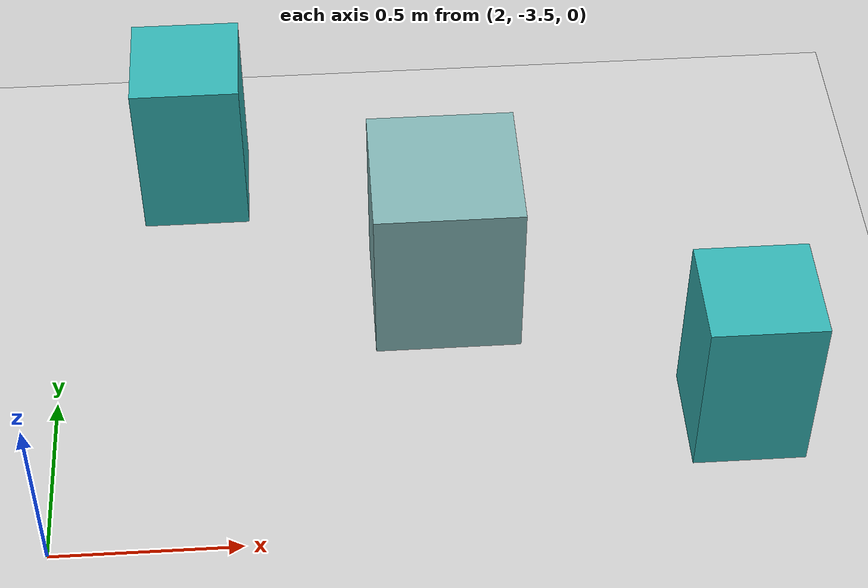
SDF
<sdf version="1.7">
 <world name="default">
  <model name="ground_plane">
   <static>1</static>
   <link name="link">
    <collision name="collision">
     <geometry><plane><normal>0 0 1</normal><size>100 100</size></plane></geometry>
     <surface><friction><ode><mu>100</mu><mu2>50</mu2></ode></friction></surface>
    </collision>
    <visual name="visual">
     <cast_shadows>0</cast_shadows>
     <geometry><plane><normal>0 0 1</normal><size>100 100</size></plane></geometry>
     <material>
      <script><uri>file://media/materials/scripts/gazebo.material</uri><name>Gazebo/Grey</name></script>
     </material>
    </visual>
   </link>
  </model>
  <model name="unit_box_0.3_0_clone_2">
   <model name="unit_box_0.3">
    <link name="link">
     <inertial>
      <mass>1</mass>
      <inertia>
       <ixx>0.166667</ixx>
       <ixy>0</ixy>
       <ixz>0</ixz>
       <iyy>0.166667</iyy>
       <iyz>0</iyz>
       <izz>0.166667</izz>
      </inertia>
     </inertial>
     <visual name="visual">
      <geometry><box><size>0.3 0.3 0.5</size></box></geometry>
      <material>
       <script><name>Gazebo/Grey</name><uri>file://media/materials/scripts/gazebo.material</uri></script>
       <shader type="pixel"><normal_map>__default__</normal_map></shader>
       <ambient>0.2 0.7 0.7 1</ambient>
       <diffuse>0.7 0.7 0.7 1</diffuse>
       <specular>0.01 0.01 0.01 1</specular>
       <emissive>0 0 0 1</emissive>
      </material>
     </visual>
     <collision name="collision">
      <geometry><box><size>0.3 0.3 0.5</size></box></geometry>
      <surface>
       <friction>
        <ode><mu>1</mu><mu2>1</mu2><fdir1>0 0 0</fdir1><slip1>0</slip1><slip2>0</slip2></ode>
        <torsional>
         <coefficient>1</coefficient>
         <patch_radius>0</patch_radius>
         <surface_radius>0</surface_radius>
         <use_patch_radius>1</use_patch_radius>
         <ode><slip>0</slip></ode>
        </torsional>
       </friction>
       <bounce><restitution_coefficient>0</restitution_coefficient><threshold>1e+06</threshold></bounce>
       <contact>
        <collide_without_contact>0</collide_without_contact>
        <collide_without_contact_bitmask>1</collide_without_contact_bitmask>
        <collide_bitmask>1</collide_bitmask>
        <ode>
         <soft_cfm>0</soft_cfm>
         <soft_erp>0.2</soft_erp>
         <kp>1e+13</kp>
         <kd>1</kd>
         <max_vel>0.01</max_vel>
         <min_depth>0</min_depth>
        </ode>
        <bullet>
         <split_impulse>1</split_impulse>
         <split_impulse_penetration_threshold>-0.01</split_impulse_penetration_threshold>
         <soft_cfm>0</soft_cfm>
         <soft_erp>0.2</soft_erp>
         <kp>1e+13</kp>
         <kd>1</kd>
        </bullet>
       </contact>
      </surface>
     </collision>
    </link>
    <static>0</static>
    <pose>1e-06 2e-06 0 0 -0 0</pose>
   </model>
   <static>1</static>
   <pose>2.37055 -2.19132 0.25 0 -0 0</pose>
  </model>
  <model name="unit_box_0.4_1_clone_0">
   <model name="unit_box_0.4">
    <link name="link">
     <inertial>
      <mass>1</mass>
      <inertia>
       <ixx>0.166667</ixx>
       <ixy>0</ixy>
       <ixz>0</ixz>
       <iyy>0.166667</iyy>
       <iyz>0</iyz>
       <izz>0.166667</izz>
      </inertia>
     </inertial>
     <visual name="visual">
      <geometry><box><size>0.4 0.4 0.5</size></box></geometry>
      <material>
       <script><name>Gazebo/Grey</name><uri>file://media/materials/scripts/gazebo.material</uri></script>
       <shader type="pixel"><normal_map>__default__</normal_map></shader>
       <ambient>0.7 0.8 0.4 1</ambient>
       <diffuse>0.5 0.7 0.7 1</diffuse>
       <specular>0.01 0.01 0.01 1</specular>
       <emissive>0 0 0 1</emissive>
      </material>
     </visual>
     <collision name="collision">
      <geometry><box><size>0.4 0.4 0.5</size></box></geometry>
      <surface>
       <friction>
        <ode><mu>1</mu><mu2>1</mu2><fdir1>0 0 0</fdir1><slip1>0</slip1><slip2>0</slip2></ode>
        <torsional>
         <coefficient>1</coefficient>
         <patch_radius>0</patch_radius>
         <surface_radius>0</surface_radius>
         <use_patch_radius>1</use_patch_radius>
         <ode><slip>0</slip></ode>
        </torsional>
       </friction>
       <bounce><restitution_coefficient>0</restitution_coefficient><threshold>1e+06</threshold></bounce>
       <contact>
        <collide_without_contact>0</collide_without_contact>
        <collide_without_contact_bitmask>1</collide_without_contact_bitmask>
        <collide_bitmask>1</collide_bitmask>
        <ode>
         <soft_cfm>0</soft_cfm>
         <soft_erp>0.2</soft_erp>
         <kp>1e+13</kp>
         <kd>1</kd>
         <max_vel>0.01</max_vel>
         <min_depth>0</min_depth>
        </ode>
        <bullet>
         <split_impulse>1</split_impulse>
         <split_impulse_penetration_threshold>-0.01</split_impulse_penetration_threshold>
         <soft_cfm>0</soft_cfm>
         <soft_erp>0.2</soft_erp>
         <kp>1e+13</kp>
         <kd>1</kd>
        </bullet>
       </contact>
      </surface>
     </collision>
    </link>
    <static>0</static>
    <pose>-3e-06 2.5e-05 0 0 -0 0</pose>
   </model>
   <static>1</static>
   <pose>3.06545 -2.6658 0.25 0 -0 0</pose>
  </model>
  <model name="unit_box_0.3_0_clone_2_clone_0">
   <model name="unit_box_0.3">
    <link name="link">
     <inertial>
      <mass>1</mass>
      <inertia>
       <ixx>0.166667</ixx>
       <ixy>0</ixy>
       <ixz>0</ixz>
       <iyy>0.166667</iyy>
       <iyz>0</iyz>
       <izz>0.166667</izz>
      </inertia>
     </inertial>
     <visual name="visual">
      <geometry><box><size>0.3 0.3 0.5</size></box></geometry>
      <material>
       <script><name>Gazebo/Grey</name><uri>file://media/materials/scripts/gazebo.material</uri></script>
       <shader type="pixel"><normal_map>__default__</normal_map></shader>
       <ambient>0.2 0.7 0.7 1</ambient>
       <diffuse>0.7 0.7 0.7 1</diffuse>
       <specular>0.01 0.01 0.01 1</specular>
       <emissive>0 0 0 1</emissive>
      </material>
     </visual>
     <collision name="collision">
      <geometry><box><size>0.3 0.3 0.5</size></box></geometry>
      <surface>
       <friction>
        <ode><mu>1</mu><mu2>1</mu2><fdir1>0 0 0</fdir1><slip1>0</slip1><slip2>0</slip2></ode>
        <torsional>
         <coefficient>1</coefficient>
         <patch_radius>0</patch_radius>
         <surface_radius>0</surface_radius>
         <use_patch_radius>1</use_patch_radius>
         <ode><slip>0</slip></ode>
        </torsional>
       </friction>
       <bounce><restitution_coefficient>0</restitution_coefficient><threshold>1e+06</threshold></bounce>
       <contact>
        <collide_without_contact>0</collide_without_contact>
        <collide_without_contact_bitmask>1</collide_without_contact_bitmask>
        <collide_bitmask>1</collide_bitmask>
        <ode>
         <soft_cfm>0</soft_cfm>
         <soft_erp>0.2</soft_erp>
         <kp>1e+13</kp>
         <kd>1</kd>
         <max_vel>0.01</max_vel>
         <min_depth>0</min_depth>
        </ode>
        <bullet>
         <split_impulse>1</split_impulse>
         <split_impulse_penetration_threshold>-0.01</split_impulse_penetration_threshold>
         <soft_cfm>0</soft_cfm>
         <soft_erp>0.2</soft_erp>
         <kp>1e+13</kp>
         <kd>1</kd>
        </bullet>
       </contact>
      </surface>
     </collision>
    </link>
    <static>0</static>
    <pose>1e-06 2e-06 0 0 -0 0</pose>
   </model>
   <static>1</static>
   <pose>3.82661 -3.15873 0.25 0 -0 0</pose>
  </model>
 </world>
</sdf>
